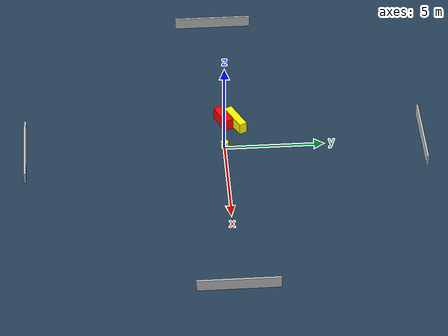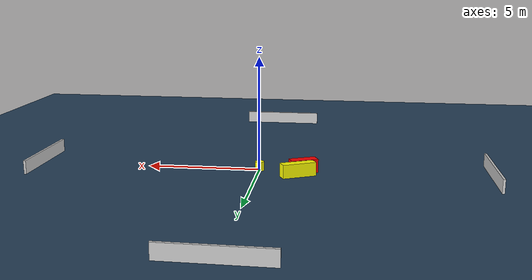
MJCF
<?xml version="1.0" ?>
<mujoco model="generated_environment">
  <option timestep="0.01" integrator="RK4" cone="elliptic"/>
  <default>
    <geom density="1"/>
  </default>
  <asset>
    <texture builtin="gradient" height="3072" name="skybox" rgb1="0.3 0.5 0.7" rgb2="0 0 0" type="skybox" width="512"/>
    <texture builtin="checker" height="300" name="groundplane" rgb1="0.2 0.3 0.4" rgb2="0.1 0.2 0.3" type="2d" width="300"/>
    <material name="groundplane" reflectance="0.2" texrepeat="5 5" texture="groundplane"/>
  </asset>
  <worldbody>
    <light dir="0 0 -1" directional="true" pos="0 0 1.5"/>
    <geom condim="3" friction="0.5 0.005 0.001" material="groundplane" name="floor" pos="0 0 0" size="0 0 0.05" type="plane"/>
    <body name="walls">
      <geom name="wall_1" condim="4" pos="-10.0 0.0 0.3" rgba="0.800000011920929 0.800000011920929 0.800000011920929 1.0" size="0.05 2.0 0.3" type="box"/>
      <geom name="wall_2" condim="4" pos="10.0 0.0 0.3" rgba="0.800000011920929 0.800000011920929 0.800000011920929 1.0" size="0.05 2.0 0.3" type="box"/>
      <geom name="wall_3" condim="4" pos="0.0 -10.0 0.3" rgba="0.800000011920929 0.800000011920929 0.800000011920929 1.0" size="2.0 0.05 0.3" type="box"/>
      <geom name="wall_4" condim="4" pos="0.0 10.0 0.3" rgba="0.800000011920929 0.800000011920929 0.800000011920929 1.0" size="2.0 0.05 0.3" type="box"/>
    </body>
    <body name="robot">
      <joint name="joint_x" type="slide" pos="0 0 0" axis="1 0 0"/>
      <joint name="joint_y" type="slide" pos="0 0 0" axis="0 1 0"/>
      <geom name="robot" type="cylinder" pos="0.0 0.0 0.2" size="0.2 0.2 0.0" mass="5.0" friction="1.0 0.005 0.0001" condim="4" rgba="1.0 1.0 0.0 1.0"/>
    </body>
    <body name="obstacle_1_movable">
      <geom name="obstacle_1_movable" condim="4" pos="-1.7574588699460822 0.6748870816098587 0.3" euler="0 0 296.5836780851727" friction="0.0 0.005 0.001" rgba="1.0 1.0 0.0 1.0" size="0.20347579447293695 0.7580863809089904 0.3" type="box" mass="0.1"/>
      <joint type="free"/>
    </body>
    <body name="obstacle_2_static">
      <geom name="obstacle_2_static" condim="4" pos="-1.9414559381622365 0.06053737121492745 0.3" euler="0 0 294.9289189011357" friction="0.0 0.005 0.001" rgba="1.0 0.0 0.0 1.0" size="0.23540043385848872 0.6067980820094053 0.3" type="box"/>
    </body>
  </worldbody>
  <actuator>
    <motor name="actuator_x" joint="joint_x" gear="1" ctrlrange="-1 1"/>
    <motor name="actuator_y" joint="joint_y" gear="1" ctrlrange="-1 1"/>
  </actuator>
</mujoco>
